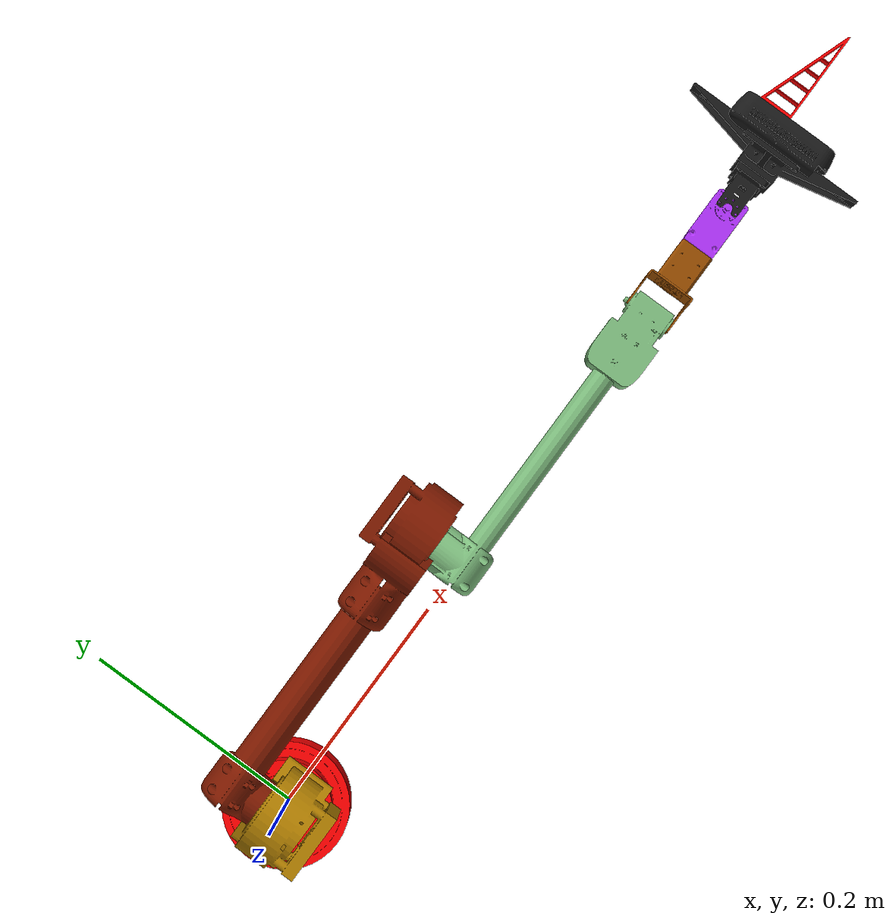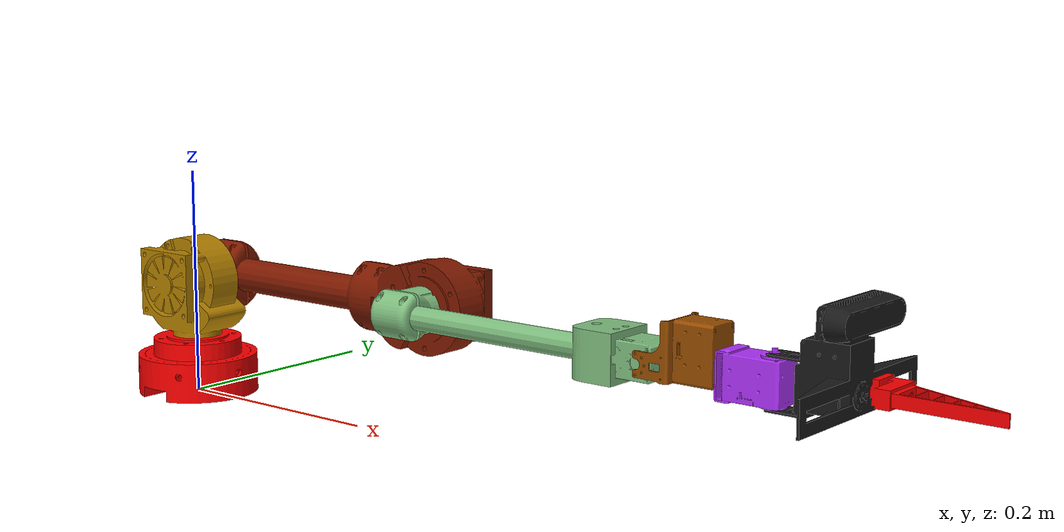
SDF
<?xml version="1.0" encoding="utf-8"?>
<sdf version='1.7'>
  <model name='st_arm'>

    <link name='manipulator_base_link'>
      <inertial>
        <pose>0 0.000334 0.031072 0 -0 0</pose>
        <mass>0.594687</mass>
        <inertia>
          <ixx>0.000331218</ixx>
          <ixy>-4.35299e-13</ixy>
          <ixz>1.53068e-12</ixz>
          <iyy>0.000348337</iyy>
          <iyz>2.26266e-06</iyz>
          <izz>0.000569437</izz>
        </inertia>
      </inertial>
      <visual name='manipulator_base_link_visual'>
        <pose>0 0 0 0 0 0</pose>
        <geometry>
          <mesh>
            <scale>1 1 1</scale>
            <uri>package://st_arm_description/meshes/stl/base_link.STL</uri>
          </mesh>
        </geometry>
        <material>
          <ambient>1.0 0.0 0.0 1</ambient>
        </material>
      </visual>
    </link>
    <joint name='shoulder_yaw_joint' type='revolute'>
      <pose relative_to='manipulator_base_link'>0 0 0 0 -0 0</pose>
      <parent>manipulator_base_link</parent>
      <child>shoulder_yaw_link</child>
      <axis>
        <xyz>0 0 1</xyz>
        <limit>
          <lower>-3.14</lower>
          <upper>3.14</upper>
          <effort>1</effort>
          <velocity>1</velocity>
        </limit>
        <dynamics>
          <damping>0.1</damping>
          <friction>0.1</friction>
          <spring_reference>0</spring_reference>
          <spring_stiffness>0</spring_stiffness>
        </dynamics>
      </axis>
    </joint>
    <link name='shoulder_yaw_link'>
      <pose relative_to='shoulder_yaw_joint'>0 0 0 0 -0 0</pose>
      <inertial>
        <pose>7.6e-05 -0.001995 0.099983 0 -0 0</pose>
        <mass>0.552307</mass>
        <inertia>
          <ixx>0.000249126</ixx>
          <ixy>8.298e-07</ixy>
          <ixz>4.85171e-07</ixz>
          <iyy>0.000406785</iyy>
          <iyz>2.59356e-07</iyz>
          <izz>0.000263429</izz>
        </inertia>
      </inertial>
      <visual name='shoulder_yaw_link_visual'>
        <pose>0 0 0 0 -0 0</pose>
        <geometry>
          <mesh>
            <scale>1 1 1</scale>
            <uri>package://st_arm_description/meshes/stl/shoulder_yaw_link.STL</uri>
          </mesh>
        </geometry>
        <material>
          <ambient>0.7 0.5 0 1</ambient>
        </material>
      </visual>
    </link>
    <joint name='shoulder_pitch_joint' type='revolute'>
      <pose relative_to='shoulder_yaw_link'>0 0 0.1019 0 -0 0</pose>
      <parent>shoulder_yaw_link</parent>
      <child>shoulder_pitch_link</child>
      <axis>
        <xyz>0 1 0</xyz>
        <limit>
          <lower>-3.9</lower>
          <upper>0.76</upper>
          <effort>1</effort>
          <velocity>1</velocity>
        </limit>
        <dynamics>
          <damping>0.1</damping>
          <friction>0.1</friction>
          <spring_reference>0</spring_reference>
          <spring_stiffness>0</spring_stiffness>
        </dynamics>
      </axis>
    </joint>
    <link name='shoulder_pitch_link'>
      <pose relative_to='shoulder_pitch_joint'>0 0 0 0 -0 0</pose>
      <inertial>
        <pose>0.222042 0.045737 -0 0 -0 0</pose>
        <mass>0.653268</mass>
        <inertia>
          <ixx>0.000286326</ixx>
          <ixy>-1.49184e-07</ixy>
          <ixz>-1.16084e-10</ixz>
          <iyy>0.000648405</iyy>
          <iyz>-1.03192e-10</iyz>
          <izz>0.000486228</izz>
        </inertia>
      </inertial>
      <visual name='shoulder_pitch_link_visual'>
        <pose>0 0 0 0 -0 0</pose>
        <geometry>
          <mesh>
            <scale>1 1 1</scale>
            <uri>package://st_arm_description/meshes/stl/shoulder_pitch_link.STL</uri>
          </mesh>
        </geometry>
        <material>
          <ambient>0.5 0.1 0 1</ambient>
        </material>
      </visual>
    </link>
    <joint name='elbow_pitch_joint' type='revolute'>
      <pose relative_to='shoulder_pitch_link'>0.25 0 0 0 -0 0</pose>
      <parent>shoulder_pitch_link</parent>
      <child>elbow_pitch_link</child>
      <axis>
        <xyz>0 1 0</xyz>
        <limit>
          <lower>-2.9</lower>
          <upper>2.9</upper>
          <effort>1</effort>
          <velocity>1</velocity>
        </limit>
        <dynamics>
          <damping>0.1</damping>
          <friction>0.1</friction>
          <spring_reference>0</spring_reference>
          <spring_stiffness>0</spring_stiffness>
        </dynamics>
      </axis>
    </joint>
    <link name='elbow_pitch_link'>
      <pose relative_to='elbow_pitch_joint'>0 0 0 0 -0 0</pose>
      <inertial>
        <pose>0.170445 0.001209 4.8e-05 0 -0 0</pose>
        <mass>0.170292</mass>
        <inertia>
          <ixx>3.02042e-05</ixx>
          <ixy>-6.35247e-08</ixy>
          <ixz>-2.34242e-10</ixz>
          <iyy>0.000198778</iyy>
          <iyz>-1.0909e-10</iyz>
          <izz>0.000200818</izz>
        </inertia>
      </inertial>
      <visual name='elbow_pitch_link_visual'>
        <pose>0 0 0 0 -0 0</pose>
        <geometry>
          <mesh>
            <scale>1 1 1</scale>
            <uri>package://st_arm_description/meshes/stl/elbow_pitch_link.STL</uri>
          </mesh>
        </geometry>
        <material>
          <ambient>0.5 0.75 0.5 1</ambient>
        </material>
      </visual>
    </link>
    <joint name='wrist_pitch_joint' type='revolute'>
      <pose relative_to='elbow_pitch_link'>0.25 0 0 0 -0 0</pose>
      <parent>elbow_pitch_link</parent>
      <child>wrist_pitch_link</child>
      <axis>
        <xyz>0 1 0</xyz>
        <limit>
          <lower>-1.57</lower>
          <upper>1.57</upper>
          <effort>1</effort>
          <velocity>1</velocity>
        </limit>
        <dynamics>
          <damping>0.1</damping>
          <friction>0.1</friction>
          <spring_reference>0</spring_reference>
          <spring_stiffness>0</spring_stiffness>
        </dynamics>
      </axis>
    </joint>
    <link name='wrist_pitch_link'>
      <pose relative_to='wrist_pitch_joint'>0 0 0 0 -0 0</pose>
      <inertial>
        <pose>0.042786 -0 0.01133 0 -0 0</pose>
        <mass>0.0923461</mass>
        <inertia>
          <ixx>2.36446e-05</ixx>
          <ixy>2.03859e-14</ixy>
          <ixz>-3.88711e-07</ixz>
          <iyy>2.44308e-05</iyy>
          <iyz>1.60956e-14</iyz>
          <izz>1.6139e-05</izz>
        </inertia>
      </inertial>
      <visual name='wrist_pitch_link_visual'>
        <pose>0 0 0 0 -0 0</pose>
        <geometry>
          <mesh>
            <scale>1 1 1</scale>
            <uri>package://st_arm_description/meshes/stl/wrist_pitch_link.STL</uri>
          </mesh>
        </geometry>
        <material>
          <ambient>0.6 0.3 0.0 1</ambient>
        </material>
      </visual>
    </link>

    <joint name='wrist_roll_joint' type='revolute'>
      <pose relative_to='wrist_pitch_link'>0 0 0 0 -0 0</pose>
      <parent>wrist_pitch_link</parent>
      <child>wrist_roll_link</child>
      <axis>
        <xyz>1 0 0</xyz>
        <limit>
          <lower>-1.57</lower>
          <upper>1.57</upper>
          <effort>1</effort>
          <velocity>1</velocity>
        </limit>
        <dynamics>
          <damping>0.1</damping>
          <friction>0.1</friction>
          <spring_reference>0</spring_reference>
          <spring_stiffness>0</spring_stiffness>
        </dynamics>
      </axis>
    </joint>
    <link name='wrist_roll_link'>
      <pose relative_to='wrist_roll_joint'>0 0 0 0 -0 0</pose>
      <inertial>
        <pose>0.091375 0 0.000362 0 -0 0</pose>
        <mass>0.0869629</mass>
        <inertia>
          <ixx>1.41812e-05</ixx>
          <ixy>-9.57639e-15</ixy>
          <ixz>2.92507e-09</ixz>
          <iyy>2.29933e-05</iyy>
          <iyz>1.70366e-16</iyz>
          <izz>1.9671e-05</izz>
        </inertia>
      </inertial>
      <visual name='wrist_roll_link_visual'>
        <pose>0 0 0 0 -0 0</pose>
        <geometry>
          <mesh>
            <scale>1 1 1</scale>
            <uri>package://st_arm_description/meshes/stl/wrist_roll_link.STL</uri>
          </mesh>
        </geometry>
        <material>
          <ambient>0.7 0.2 1 1</ambient>
        </material>
      </visual>
    </link>

    <joint name='wrist_yaw_joint' type='revolute'>
      <pose relative_to='wrist_roll_link'>0.1045 0 0 0 -0 0</pose>
      <parent>wrist_roll_link</parent>
      <child>wrist_yaw_link</child>
      <axis>
        <xyz>0 0 1</xyz>
        <limit>
          <lower>-2</lower>
          <upper>2</upper>
          <effort>1</effort>
          <velocity>1</velocity>
        </limit>
        <dynamics>
          <damping>0.1</damping>
          <friction>0.1</friction>
          <spring_reference>0</spring_reference>
          <spring_stiffness>0</spring_stiffness>
        </dynamics>
      </axis>
    </joint>

    <link name='wrist_yaw_link'>
      <pose relative_to='wrist_yaw_joint'>0 0 0 0 -0 0</pose>
      <inertial>
        <pose>0.052108 0.000348 0.022185 0 -0 0</pose>
        <mass>0.148763</mass>
        <inertia>
          <ixx>6.90068e-05</ixx>
          <ixy>2.51082e-07</ixy>
          <ixz>4.81485e-07</ixz>
          <iyy>3.3479e-05</iyy>
          <iyz>-1.73104e-09</iyz>
          <izz>5.62471e-05</izz>
        </inertia>
      </inertial>
      <visual name='wrist_yaw_link_visual'>
        <pose>0 0 0 0 -0 0</pose>
        <geometry>
          <mesh>
            <scale>1 1 1</scale>
            <uri>package://st_arm_description/meshes/stl/wrist_yaw_link.STL</uri>
          </mesh>
        </geometry>
        <material>
          <ambient>0.1 0.1 0.1 1</ambient>
        </material>
      </visual>
    </link>

    <joint name='gripper_left_joint' type='prismatic'>
      <pose relative_to='wrist_yaw_link'>0.083595 0 0 0 -0 0</pose>
      <parent>wrist_yaw_link</parent>
      <child>gripper_left_link</child>
      <axis>
        <xyz>0 -1 0</xyz>
        <limit>
          <lower>-0.03</lower>
          <upper>0</upper>
          <effort>1</effort>
          <velocity>1</velocity>
        </limit>
        <dynamics>
          <damping>0.1</damping>
          <friction>0.1</friction>
          <spring_reference>0</spring_reference>
          <spring_stiffness>0</spring_stiffness>
        </dynamics>
      </axis>
    </joint>

    <link name='gripper_left_link'>
      <pose relative_to='gripper_left_joint'>0 0 0 0 -0 0</pose>

      <inertial>
        <pose>0.011191 0.017208 -0 0 -0 0</pose>
        <mass>0.0151655</mass>
        <inertia>
          <ixx>1.52745e-06</ixx>
          <ixy>1.20106e-06</ixy>
          <ixz>3.87211e-18</ixz>
          <iyy>7.43136e-06</iyy>
          <iyz>-6.58552e-19</iyz>
          <izz>8.50839e-06</izz>
        </inertia>
      </inertial>

      <collision name='gripper_left_link_collision'>
        <pose>0 0 0 0 -0 0</pose>
        <geometry>
          <mesh>
            <scale>1 1 1</scale>
            <uri>package://st_arm_description/meshes/stl/gripper_left_link.STL</uri>
          </mesh>
        </geometry>
      </collision>

      <visual name='gripper_left_link_visual'>
        <pose>0 0 0 0 -0 0</pose>
        <geometry>
          <mesh>
            <scale>1 1 1</scale>
            <uri>package://st_arm_description/meshes/stl/gripper_left_link.STL</uri>
          </mesh>
        </geometry>
        <material>
          <ambient>1 0 0 1</ambient>
        </material>
      </visual>
    </link>

    <joint name='gripper_right_joint' type='prismatic'>
      <pose relative_to='wrist_yaw_link'>0.083595 0 0 0 -0 0</pose>
      <parent>wrist_yaw_link</parent>
      <child>gripper_right_link</child>
      <axis>
        <xyz>0 1 0</xyz>
        <limit>
          <lower>-0.03</lower>
          <upper>0</upper>
          <effort>1</effort>
          <velocity>1</velocity>
        </limit>
        <dynamics>
          <damping>0.1</damping>
          <friction>0.1</friction>
          <spring_reference>0</spring_reference>
          <spring_stiffness>0</spring_stiffness>
        </dynamics>
      </axis>
    </joint>

    <link name='gripper_right_link'>
      <pose relative_to='gripper_right_joint'>0 0 0 0 -0 0</pose>

      <inertial>
        <pose>0.011191 -0.017208 0 0 -0 0</pose>
        <mass>0.0151655</mass>
        <inertia>
          <ixx>1.52745e-06</ixx>
          <ixy>-1.20106e-06</ixy>
          <ixz>1.01095e-20</ixz>
          <iyy>7.43136e-06</iyy>
          <iyz>9.01849e-21</iyz>
          <izz>8.50839e-06</izz>
        </inertia>
      </inertial>

      <collision name='gripper_right_link_collision'>
        <pose>0 0 0 0 -0 0</pose>
        <geometry>
          <mesh>
            <scale>1 1 1</scale>
            <uri>package://st_arm_description/meshes/stl/gripper_right_link.STL</uri>
          </mesh>
        </geometry>
      </collision>

    </link>
  </model>
</sdf>
